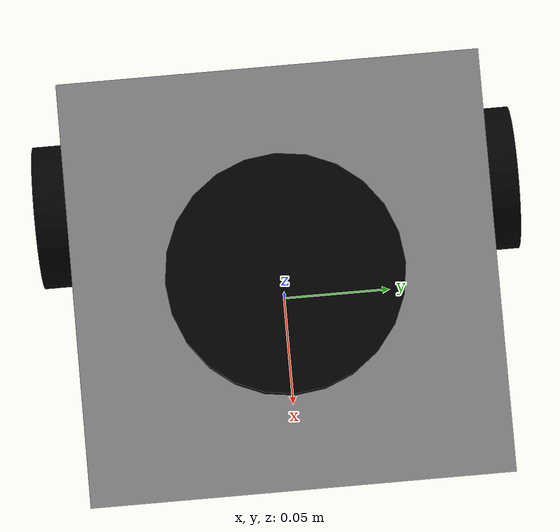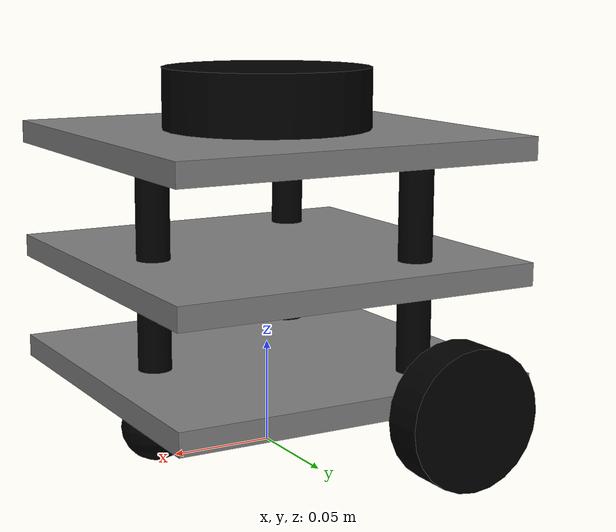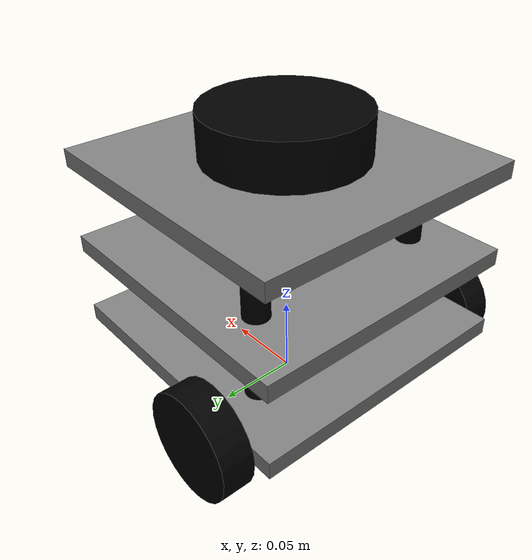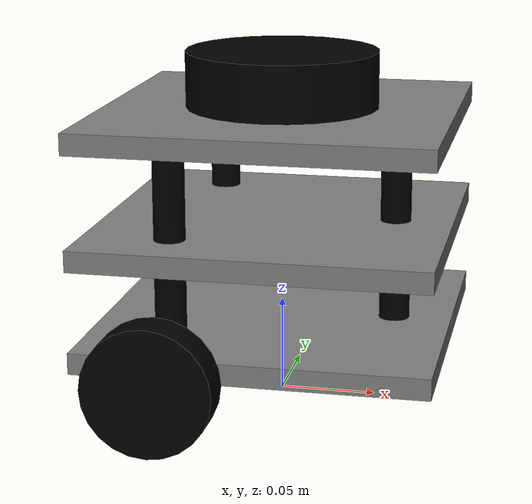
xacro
<?xml version="1.0"?>
<robot name="turtle_nav" xmlns:xacro="http://www.ros.org/wiki/xacro">

        <xacro:include filename="common_prop.xacro" />
        <xacro:include filename="turtle_base.xacro" />
        <xacro:include filename="turtle_base_gazebo.xacro" />
        <xacro:include filename="sensors.xacro" />
        <xacro:include filename="sensors_gazebo.xacro"/>

        <joint name="lidar_joint" type="fixed">
                <parent link="base_link"/>
                <child link="lidar_link"/>
                <origin xyz="0 0 ${(lidar_length + base_height)/2 + 0.115}" rpy="0 0 0"/>
        </joint>

</robot>

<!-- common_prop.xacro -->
<robot xmlns:xacro="http://www.ros.org/wiki/xacro">
        <material name="blue">
            <color rgba="0 0 1 1"/>
        </material>
        <material name="grey">
            <color rgba="0.5  0.5  0.5 1"/>
        </material>
        <material name="orange">
            <color rgba="1 0.5 0 1"/>
        </material>
        <material name="yellow">
                <color rgba="1 1 0 1"/>
        </material>
        <material name="black">
                <color rgba="0 0 0 1"/>
        </material>
        <material name="white">
                <color rgba="1 1 1 1"/>
        </material>
        <xacro:macro name="box_inertia" params="length width height mass  xyz rpy ">
            <inertial>
                <origin xyz="${xyz}" rpy="${rpy}"/>
                <mass value="${mass}"/>
                <inertia ixx="${(mass/12) * (height*height + length*length)}" ixy="0" ixz="0" iyy="${(mass/12)*(width*width + length*length)}" iyz="0" izz="${(mass/12)*(width*width + height*height)}"/>
            </inertial>
        </xacro:macro>
        <xacro:macro name="cylinder_inertia" params="m l r xyz rpy">
            <inertial>
                <origin xyz="${xyz}" rpy="${rpy}"/>
                <mass value="${m}"/>
                <inertia ixx="${(m/12)*(3*r*r + l*l)}" ixy="0" ixz="0" iyy="${(m/12)*(3*r*r + l*l)}" iyz="0" izz="${(m*r*r)/2}"/>
            </inertial>
        </xacro:macro>
        <xacro:macro name="sphere_inertia" params="m r xyz rpy">
            <inertial>
                <origin xyz="${xyz}" rpy="${rpy}"/>
                <mass value="${m}"/>
                <inertia ixx="${(m*r*r)*2/5}" ixy="0" ixz="0" iyy="${(m*r*r)*2/5}" iyz="0" izz="${(m*r*r)*2/5}"/>
            </inertial>
        </xacro:macro>

</robot>

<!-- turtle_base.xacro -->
<robot  xmlns:xacro="http://www.ros.org/wiki/xacro">

        <xacro:property name="base_length" value="0.18"/>
        <xacro:property name="base_width" value="0.18"/>
        <xacro:property name="base_height" value="0.011"/>
        <xacro:property name="base_mass" value="1.2"/>
        <xacro:property name="floor1_length" value="0.18"/>
        <xacro:property name="floor1_width" value="0.18"/>
        <xacro:property name="floor1_height" value="0.011"/>
        <xacro:property name="floor1_mass" value="0.4"/>
        <xacro:property name="floor2_length" value="0.18"/>
        <xacro:property name="floor2_width" value="0.18"/>
        <xacro:property name="floor2_height" value="0.011"/>
        <xacro:property name="floor2_mass" value="0.3"/>
        <xacro:property name="floor3_length" value="0.18"/>
        <xacro:property name="floor3_width" value="0.18"/>
        <xacro:property name="floor3_height" value="0.011"/>
        <xacro:property name="floor3_mass" value="0.2"/>
        <xacro:property name="wheel_radius" value="0.033"/>
        <xacro:property name="wheel_length" value="0.02"/>
        <xacro:property name="wheel_mass" value="0.15"/>
        <xacro:property name="caster_wheel_radius" value="0.01"/>
        <xacro:property name="caster_wheel_mass" value="0.05"/>

        <link name="base_link">
            <visual>
                <geometry>
                    <box size="${base_length} ${base_width} ${base_height}"/>
                </geometry>
                <origin xyz="0 0 ${base_height/2}" rpy="0 0 0"/>
                <material name="grey"/>
            </visual>
            <collision>
                <geometry>
                    <box size="${base_length} ${base_width} ${base_height}"/>
                </geometry>
                <origin xyz="0 0 ${base_height/2}" rpy="0 0 0"/>
            </collision>
            <xacro:box_inertia mass="${base_mass}" length="${2*base_length}" width="${2*base_width}" height="${2*base_height}" xyz="0 0 0" rpy="0 0 0"/>
        </link>

        <link name="base_footprint"/>

        <link name="floor1_link">
            <visual>
                <geometry>
                    <box size="${floor1_length} ${floor1_width} ${floor1_height}"/>
                </geometry>
                <origin xyz="0 0 0" rpy="0 0 0"/>
                <material name="grey"/>
            </visual>
            <collision>
                <geometry>
                    <box size="${floor1_length} ${floor1_width} ${floor1_height}"/>
                </geometry>
                <origin xyz="0 0 0" rpy="0 0 0"/>
            </collision>
            <xacro:box_inertia mass="${floor1_mass}" length="${2*floor1_length}" width="${2*floor1_width}" height="${2*floor1_height}" xyz="0 0 -${floor1_height/2}" rpy="0 0 0"/>
        </link>

        <link name="floor2_link">
            <visual>
                <geometry>
                    <box size="${floor2_length} ${floor2_width} ${floor2_height}"/>
                </geometry>
                <origin xyz="0 0 0" rpy="0 0 0"/>
                <material name="grey"/>
            </visual>
            <collision>
                <geometry>
                    <box size="${floor2_length} ${floor2_width} ${floor2_height}"/>
                </geometry>
                <origin xyz="0 0 0" rpy="0 0 0"/>
            </collision>
            <xacro:box_inertia mass="${floor2_mass}" length="${2*floor2_length}" width="${2*floor2_width}" height="${2*floor2_height}" xyz="0 0 -${floor2_height/2}" rpy="0 0 0"/>
        </link>
        <link name="right_wheel_link">
            <visual>
                <geometry>
                    <cylinder length="${wheel_length}" radius="${wheel_radius}"/>
                </geometry>
                <origin xyz="0 0 0" rpy="${pi/2} 0 0"/>
                <material name="black"/>
            </visual>
            <collision>
                <geometry>
                    <cylinder length="${wheel_length}" radius="${wheel_radius}"/>
                </geometry>
                <origin xyz="0 0 0" rpy="${pi/2} 0 0"/>
            </collision>
            <xacro:cylinder_inertia m="${wheel_mass}" l="${2*wheel_length}" r="${2*wheel_radius}" xyz="0 0 0" rpy="${pi/2} 0 0"/>
        </link>

        <link name="left_wheel_link">
            <visual>
                <geometry>
                    <cylinder length="${wheel_length}" radius="${wheel_radius}"/>
                </geometry>
                <origin xyz="0 0 0" rpy="${pi/2} 0 0"/>
                <material name="black"/>
            </visual>
            <collision>
                <geometry>
                    <cylinder length="${wheel_length}" radius="${wheel_radius}"/>
                </geometry>
                <origin xyz="0 0 0" rpy="${pi/2} 0 0"/>
            </collision>
            <xacro:cylinder_inertia m="${wheel_mass}" l="${2*wheel_length}" r="${2*wheel_radius}" xyz="0 0 0" rpy="${pi/2} 0 0"/>
        </link>

        <link name="caster_wheel_link">
            <visual>
                <geometry>
                    <sphere radius="${wheel_radius/2.0}"/>
                </geometry>
                <origin xyz="0 0 0" rpy="0 0 0"/>
                <material name="black"/>
            </visual>
            <collision>
                <geometry>
                    <sphere radius="${wheel_radius/2.0}"/>
                </geometry>
                <origin xyz="0 0 0" rpy="0 0 0"/>
            </collision>
            <xacro:sphere_inertia m="${caster_wheel_mass}" r="${2*wheel_radius/2.0}" xyz="0 0 0" rpy="0 0 0"/>
        </link>

        <xacro:macro name="standoff" params="prefix radius length mass xyz rpy">
            <link name="${prefix}_standoff_link">
                <visual>
                    <geometry>
                        <cylinder length="${length}" radius="${radius}"/>
                    </geometry>
                    <origin xyz="${xyz}" rpy="${rpy}"/>
                    <material name="black"/>
                </visual>
                <collision>
                    <geometry>
                        <cylinder length="${length}" radius="${radius}"/>
                    </geometry>
                    <origin xyz="${xyz}" rpy="${rpy}"/>
                </collision>
                <xacro:cylinder_inertia m="${mass}" l="${2*length}" r="${2*radius}" xyz="${xyz}" rpy="${rpy}"/>
            </link>
        </xacro:macro>
        <xacro:standoff prefix="right_wheel_1" radius="0.008" length="0.05" mass="0.002" xyz="0 0 0" rpy="0 0 0"/>
        <xacro:standoff prefix="left_wheel_1" radius="0.008" length="0.05" mass="0.002" xyz="0 0 0" rpy="0 0 0"/>
        <xacro:standoff prefix="caster_wheel_1" radius="0.008" length="0.05" mass="0.002" xyz="0 0 0" rpy="0 0 0"/>
        <xacro:standoff prefix="right_wheel_2" radius="0.008" length="0.05" mass="0.002" xyz="0 0 0" rpy="0 0 0"/>
        <xacro:standoff prefix="left_wheel_2" radius="0.008" length="0.05" mass="0.002" xyz="0 0 0" rpy="0 0 0"/>
        <xacro:standoff prefix="caster_wheel_2" radius="0.008" length="0.05" mass="0.002" xyz="0 0 0" rpy="0 0 0"/>
        <joint name="footprint_to_base" type="fixed">
            <parent link="base_footprint"/>
            <child link="base_link"/>
            <origin xyz="0 0 ${wheel_radius}" rpy="0 0 0"/>
        </joint>

        <joint name="base_to_right_wheel_1" type="fixed">
            <parent link="base_link"/>
            <child link="right_wheel_1_standoff_link"/>
            <origin xyz="${-base_length/4.0} ${-(base_width )/3.0} ${0.025 + base_height}" rpy="0 0 0"/>
        </joint>

        <joint name="base_to_left_wheel_1" type="fixed">
            <parent link="base_link"/>
            <child link="left_wheel_1_standoff_link"/>
            <origin xyz="${-base_length/4.0} ${(base_width )/3.0} ${0.025 + base_height}" rpy="0 0 0"/>
        </joint>

        <joint name="base_to_caster_wheel_1" type="fixed">
            <parent link="base_link"/>
            <child link="caster_wheel_1_standoff_link"/>
            <origin xyz="${base_length/3.0} 0 ${0.025 + base_height}" rpy="0 0 0"/>
        </joint>

        <joint name="floor1_to_right_wheel_2" type="fixed">
            <parent link="floor1_link"/>
            <child link="right_wheel_2_standoff_link"/>
            <origin xyz="${-base_length/4.0} ${-(base_width )/3.0} ${0.025 + base_height/2}" rpy="0 0 0"/>
        </joint>

        <joint name="floor1_to_left_wheel_2" type="fixed">
            <parent link="floor1_link"/>
            <child link="left_wheel_2_standoff_link"/>
            <origin xyz="${-base_length/4.0} ${(base_width )/3.0} ${0.025 + base_height/2}" rpy="0 0 0"/>
        </joint>

        <joint name="floor1_to_caster_wheel_2" type="fixed">
            <parent link="floor1_link"/>
            <child link="caster_wheel_2_standoff_link"/>
            <origin xyz="${base_length/3.0} 0 ${0.025 + base_height/2}" rpy="0 0 0"/>
        </joint>

        <joint name="base_to_right_wheel" type="continuous">
            <parent link="base_link"/>
            <child link="right_wheel_link"/>
            <origin xyz="${-base_length/4.0} ${-(base_width + wheel_length)/2.0} 0" rpy="0 0 0"/>
            <dynamics damping="1.0" friction="1.0"/>
            <axis xyz="0 1 0"/>
        </joint>

        <joint name="base_to_left_wheel" type="continuous">
            <parent link="base_link"/>
            <child link="left_wheel_link"/>
            <origin xyz="${-base_length/4.0} ${(base_width + wheel_length)/2.0} 0" rpy="0 0 0"/>
            <dynamics damping="1.0" friction="1.0"/>
            <axis xyz="0 1 0"/>
        </joint>

        <joint name="base_to_caster_wheel" type="fixed">
            <parent link="base_link"/>
            <child link="caster_wheel_link"/>
            <origin xyz="${base_length/3.0} 0 ${-wheel_radius/2}" rpy="0 0 0"/>
        </joint>

        <joint name="base_to_floor1" type="fixed">
            <parent link="base_link"/>
            <child link="floor1_link"/>
            <origin xyz="0 0 ${wheel_radius + 0.025}" rpy="0 0 0"/>
        </joint>

        <joint name="floor1_to_floor2" type="fixed">
            <parent link="floor1_link"/>
            <child link="floor2_link"/>
            <origin xyz="0 0 ${wheel_radius + 0.025}" rpy="0 0 0"/>
        </joint>

</robot>

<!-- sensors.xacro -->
<robot  xmlns:xacro="http://www.ros.org/wiki/xacro">

    <xacro:property name="lidar_length" value="0.03"/>
    <xacro:property name="lidar_radius" value="0.05"/>

    <link name="lidar_link">
        <visual>
            <origin xyz="0 0 0" rpy="0 0 0"/>
            <geometry>
                <cylinder length="${lidar_length}" radius="${lidar_radius}"/>
            </geometry>
            <material name="black"/>
        </visual>
        <collision>
            <origin xyz="0 0 0" rpy="0 0 0"/>
            <geometry>
                <cylinder length="${lidar_length}" radius="${lidar_radius}"/>
            </geometry>
        </collision>
        <xacro:cylinder_inertia m="0.5" l="${lidar_length}" r="${lidar_radius}" xyz="0 0 0" rpy="0 0 0"/>
    </link>
</robot>
